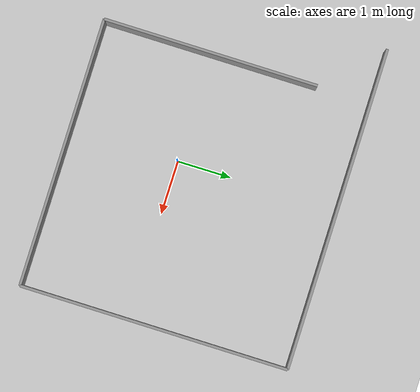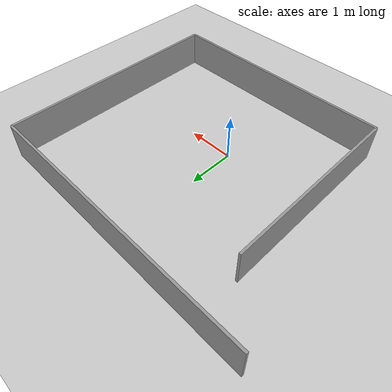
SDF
<?xml version="1.0" ?>
<sdf version="1.6">
  <world name="spiral_corridor">
    <include><uri>model://ground_plane</uri></include>
    <include><uri>model://sun</uri></include>

    <model name="spiral_1"><static>true</static><pose>0 3 0.4 0 0 0</pose>
      <link name="link">
        <collision name="c"><geometry><box><size>6 0.05 0.8</size></box></geometry></collision>
        <visual name="v"><geometry><box><size>6 0.05 0.8</size></box></geometry>
          <material><ambient>0.6 0.6 0.6 1</ambient></material></visual>
      </link>
    </model>
    <model name="spiral_2"><static>true</static><pose>3 0.5 0.4 0 0 0</pose>
      <link name="link">
        <collision name="c"><geometry><box><size>0.05 5 0.8</size></box></geometry></collision>
        <visual name="v"><geometry><box><size>0.05 5 0.8</size></box></geometry>
          <material><ambient>0.6 0.6 0.6 1</ambient></material></visual>
      </link>
    </model>
    <model name="spiral_3"><static>true</static><pose>0.5 -2 0.4 0 0 0</pose>
      <link name="link">
        <collision name="c"><geometry><box><size>5 0.05 0.8</size></box></geometry></collision>
        <visual name="v"><geometry><box><size>5 0.05 0.8</size></box></geometry>
          <material><ambient>0.6 0.6 0.6 1</ambient></material></visual>
      </link>
    </model>
    <model name="spiral_4"><static>true</static><pose>-2 0 0.4 0 0 0</pose>
      <link name="link">
        <collision name="c"><geometry><box><size>0.05 4 0.8</size></box></geometry></collision>
        <visual name="v"><geometry><box><size>0.05 4 0.8</size></box></geometry>
          <material><ambient>0.6 0.6 0.6 1</ambient></material></visual>
      </link>
    </model>
    <physics type="ode">
      <max_step_size>0.001</max_step_size>
      <real_time_factor>1</real_time_factor>
    </physics>
  </world>
</sdf>
